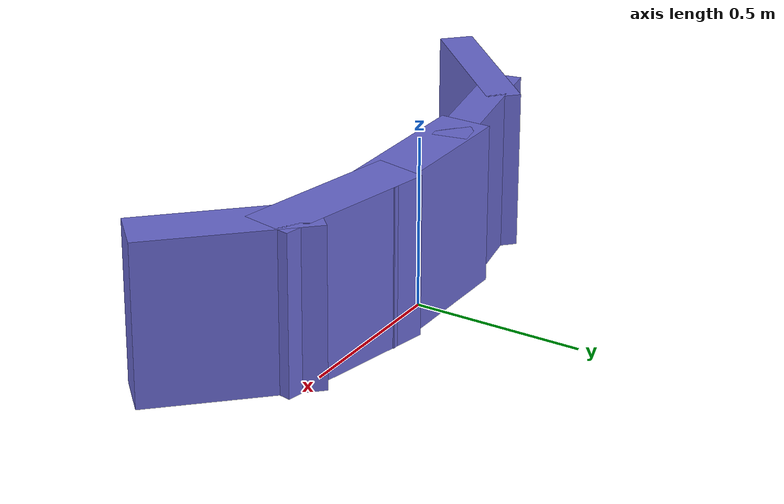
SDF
<sdf version="1.6">
    <model name="car_front">
        <allow_auto_disable>true</allow_auto_disable>
        <link name="link_1">
            <kinematic>true</kinematic>
            <pose>-0.644539 -0.18 0.23 0 -0 0.8</pose>
            <visual name="visual">
                <geometry>
                    <box>
                        <size>0.5 0.10 0.47</size>
                    </box>
                </geometry>
                <material>
                    <ambient>0.4 0.4 0.8 1.0</ambient>
                    <diffuse>0.4 0.4 0.8 1.0</diffuse>
                </material>
            </visual>
            <collision name="collision">
                <geometry>
                    <box>
                        <size>0.5 0.10 0.47</size>
                    </box>
                </geometry>
            </collision>
        </link>
        <link name="link_2">
            <kinematic>true</kinematic>
            <pose>-0.370443 -0.03 0.23 0 -0 0.2</pose>
            <visual name="visual">
                <geometry>
                    <box>
                        <size>0.5 0.10 0.47</size>
                    </box>
                </geometry>
                <material>
                    <ambient>0.4 0.4 0.8 1.0</ambient>
                    <diffuse>0.4 0.4 0.8 1.0</diffuse>
                </material>
            </visual>
            <collision name="collision">
                <geometry>
                    <box>
                        <size>0.5 0.10 0.47</size>
                    </box>
                </geometry>
            </collision>
        </link>
        <link name="link_3">
            <kinematic>true</kinematic>
            <pose>0 0 0.23 0 0 0 0</pose>
            <visual name="visual">
                <geometry>
                    <box>
                        <size>0.5 0.15 0.47</size>
                    </box>
                </geometry>
                <material>
                    <ambient>0.4 0.4 0.8 1.0</ambient>
                    <diffuse>0.4 0.4 0.8 1.0</diffuse>
                </material>
            </visual>
            <collision name="collision">
                <geometry>
                    <box>
                        <size>0.5 0.15 0.47</size>
                    </box>
                </geometry>
            </collision>
        </link>
        <link name="link_4">
            <kinematic>true</kinematic>
            <pose>0.37331 -0.03 0.23 0 0 -0.2</pose>
            <visual name="visual">
                <geometry>
                    <box>
                        <size>0.5 0.15 0.47</size>
                    </box>
                </geometry>
                <material>
                    <ambient>0.4 0.4 0.8 1.0</ambient>
                    <diffuse>0.4 0.4 0.8 1.0</diffuse>
                </material>
            </visual>
            <collision name="collision">
                <geometry>
                    <box>
                        <size>0.5 0.15 0.47</size>
                    </box>
                </geometry>
            </collision>
        </link>
        <link name="link_5">
            <kinematic>true</kinematic>
            <pose>0.658656 -0.18 0.23 0 0 -0.8</pose>
            <visual name="visual">
                <geometry>
                    <box>
                        <size>0.5 0.15 0.47</size>
                    </box>
                </geometry>
                <material>
                    <ambient>0.4 0.4 0.8 1.0</ambient>
                    <diffuse>0.4 0.4 0.8 1.0</diffuse>
                </material>
            </visual>
            <collision name="collision">
                <geometry>
                    <box>
                        <size>0.5 0.15 0.47</size>
                    </box>
                </geometry>
            </collision>
        </link>
    </model>
</sdf>
